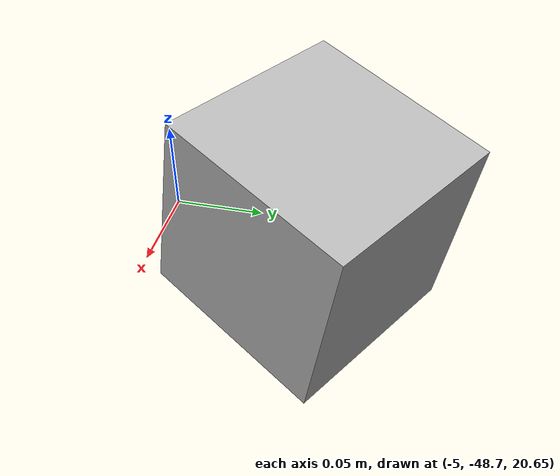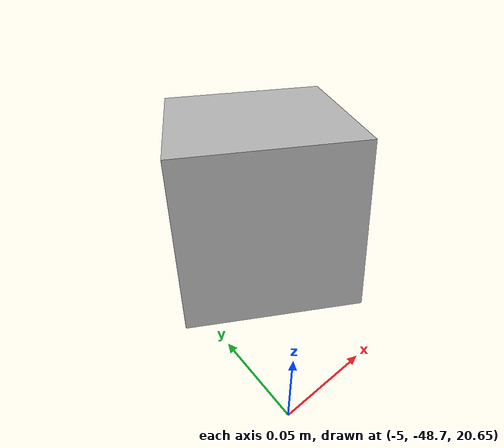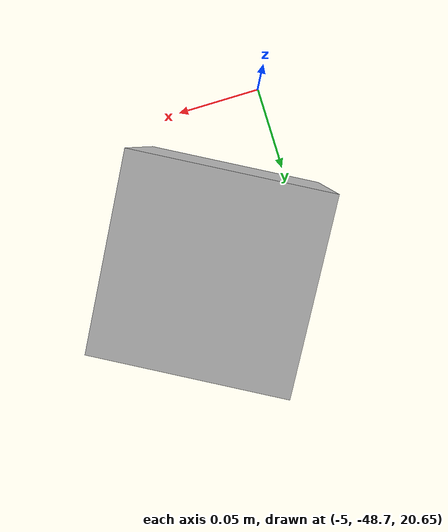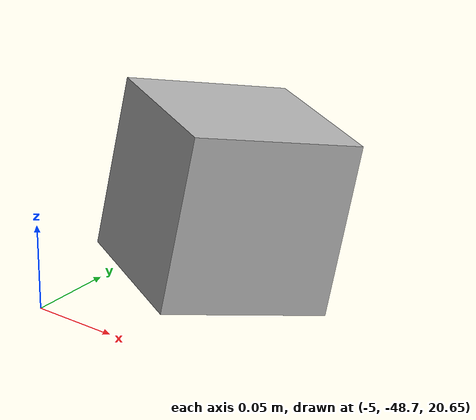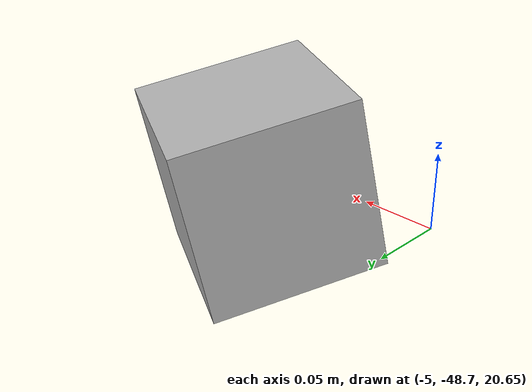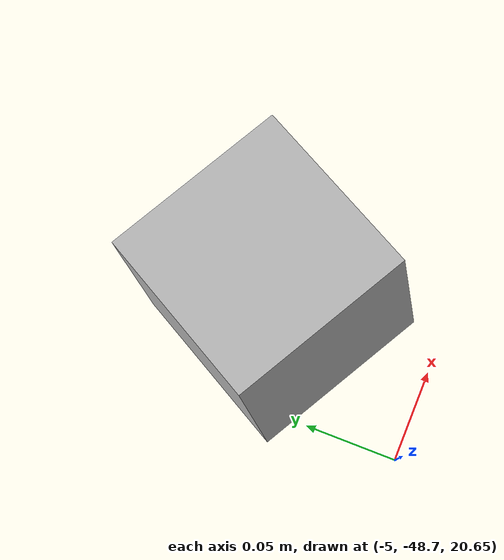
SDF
<?xml version="1.0" ?>
<sdf version="1.4">
  <world name="default">
    <include>
      <uri>model://ground_plane</uri>
    </include>
    <include>
      <uri>model://sun</uri>
    </include>

    <!-- Only one ROS interface plugin is required per world, as any other plugin can connect a Gazebo
         topic to a ROS topic (or vise versa). -->
    <plugin name="ros_interface_plugin" filename="librotors_gazebo_ros_interface_plugin.so"/>

    <spherical_coordinates>
      <surface_model>EARTH_WGS84</surface_model>
      <latitude_deg>47.3667</latitude_deg>
      <longitude_deg>8.5500</longitude_deg>
      <elevation>500.0</elevation>
      <heading_deg>0</heading_deg>
    </spherical_coordinates>
    <physics type='ode'>
      <ode>
        <solver>
          <type>quick</type>
          <iters>1000</iters>
          <sor>1.3</sor>
        </solver>
        <constraints>
          <cfm>0</cfm>
          <erp>0.2</erp>
          <contact_max_correcting_vel>100</contact_max_correcting_vel>
          <contact_surface_layer>0.001</contact_surface_layer>
        </constraints>
      </ode>
      <max_step_size>0.005</max_step_size>
      <real_time_factor>1</real_time_factor>
      <real_time_update_rate>200</real_time_update_rate>
      <gravity>0 0 -9.8</gravity>
    </physics>
    <model name='camera'>
      <static>true</static>
      <pose>-4.943654 -48.606812 20.700224 0.0 0.207643 1.060195</pose>
      <link name='link'>
        <visual name='visual'>
          <geometry>
            <box>
              <size>0.1 0.1 0.1</size>
            </box>
          </geometry>
        </visual>
        <sensor name='my_camera' type='camera'>
          <camera>
            <save enabled="true">
              <path>/tmp/camera_save_tutorial</path>
            </save>
            <horizontal_fov>1.047</horizontal_fov>
            <image>
              <width>1920</width>
              <height>1080</height>
            </image>
            <clip>
              <near>0.1</near>
              <far>100</far>
            </clip>
          </camera>
          <always_on>1</always_on>
          <update_rate>30</update_rate>
        </sensor>
      </link>
    </model>
  </world>
</sdf>
